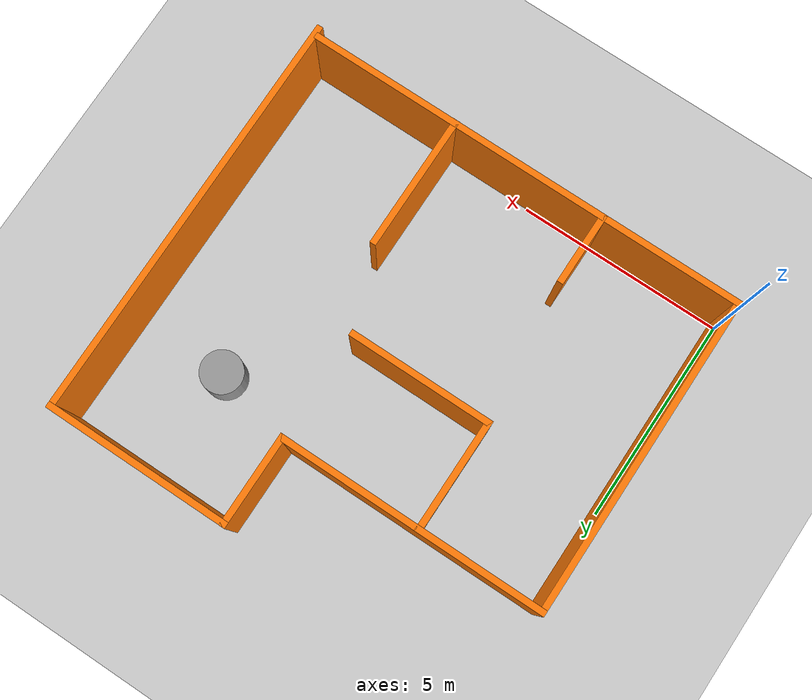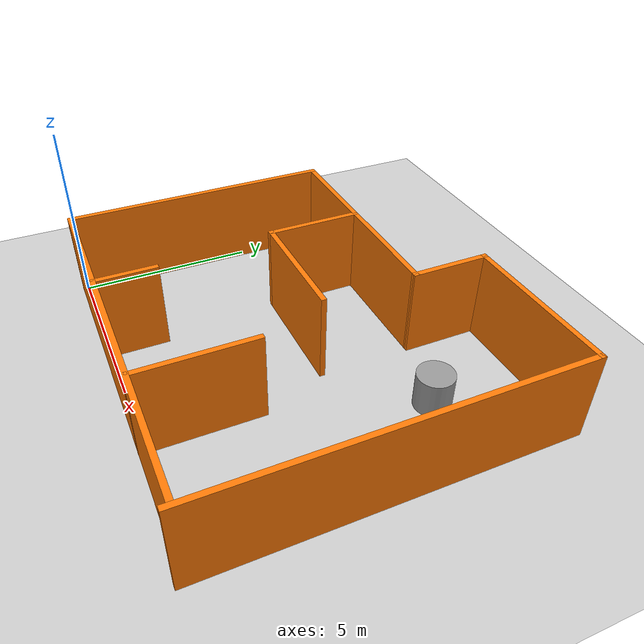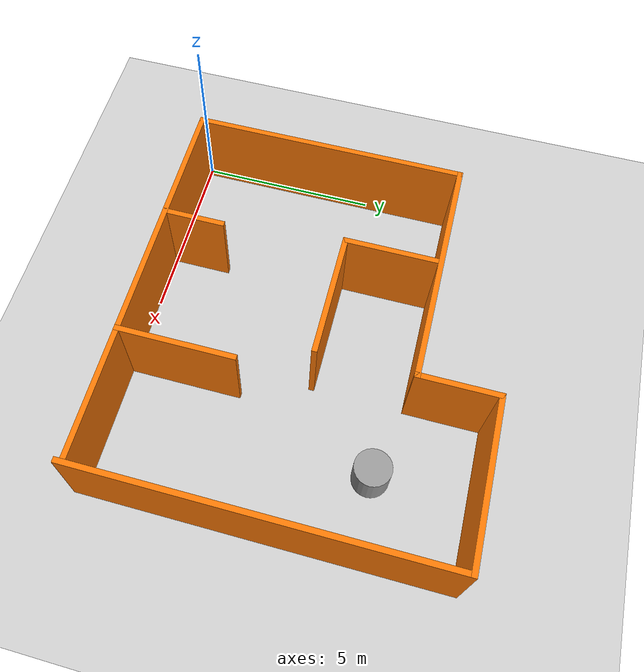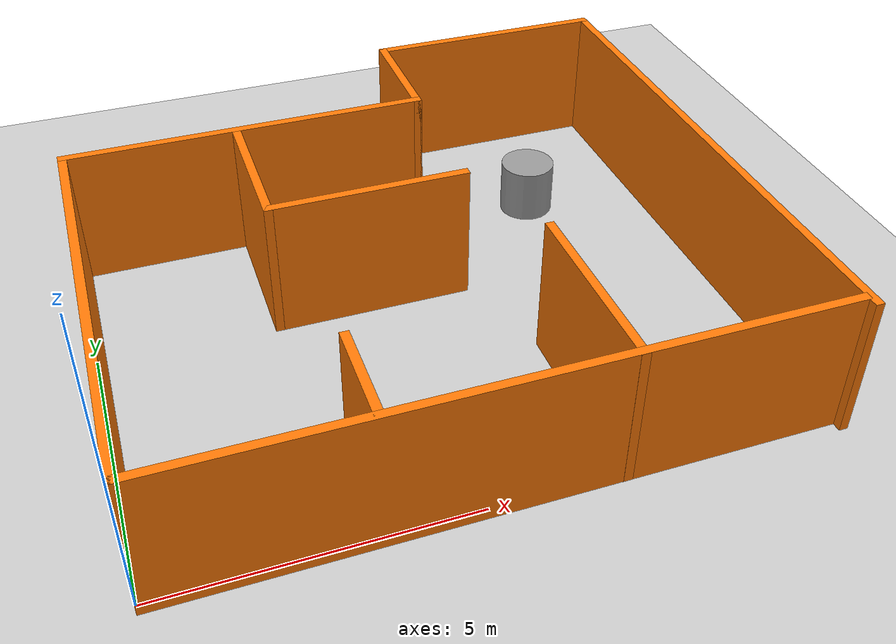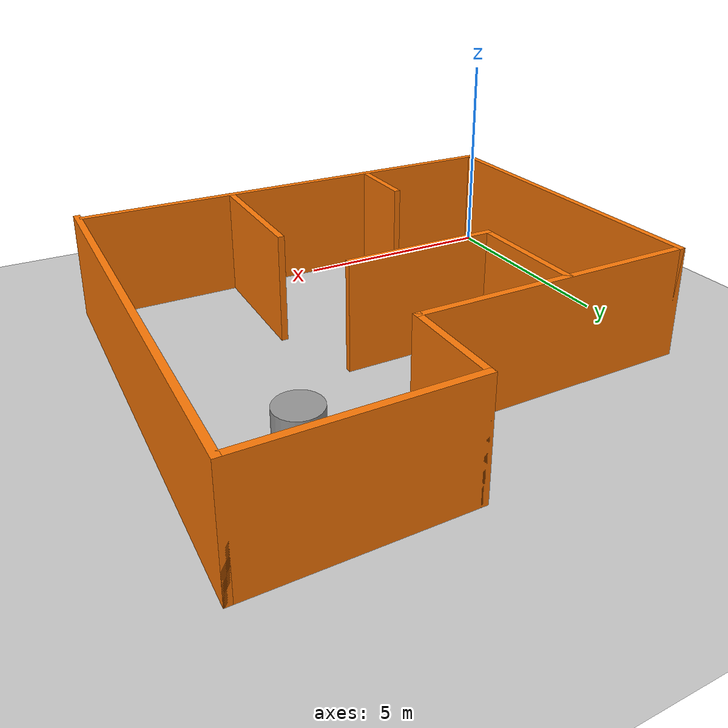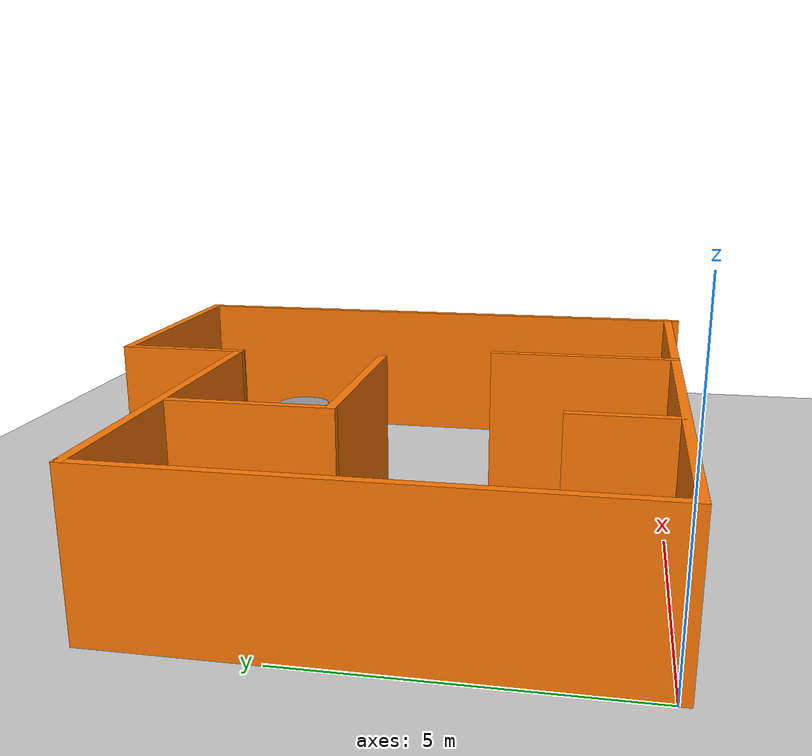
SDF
<sdf version="1.6">
 <world name="default">
  <light name="sun" type="directional">
   <pose>0 0 10 0 -0 0</pose>
   <diffuse>0.8 0.8 0.8 1</diffuse>
   <specular>0.1 0.1 0.1 1</specular>
   <attenuation>
    <range>1000</range>
    <constant>0.9</constant>
    <linear>0.01</linear>
    <quadratic>0.001</quadratic>
   </attenuation>
   <direction>-0.5 0.5 -1</direction>
  </light>
  <model name="ground_plane">
   <static>1</static>
   <link name="link">
    <collision name="collision">
     <geometry><plane><normal>0 0 1</normal><size>100 100</size></plane></geometry>
     <surface><friction><ode><mu>100</mu><mu2>50</mu2></ode></friction></surface>
    </collision>
    <visual name="visual">
     <cast_shadows>0</cast_shadows>
     <geometry><plane><normal>0 0 1</normal><size>100 100</size></plane></geometry>
     <material>
      <script><uri>file://media/materials/scripts/gazebo.material</uri><name>Gazebo/Grey</name></script>
     </material>
    </visual>
   </link>
  </model>
  <gravity>0 0 -9.8</gravity>
  <magnetic_field>6e-06 2.3e-05 -4.2e-05</magnetic_field>
  <atmosphere type="adiabatic"/>
  <physics name="default_physics" default="0" type="ode">
   <max_step_size>0.001</max_step_size>
   <real_time_factor>1</real_time_factor>
   <real_time_update_rate>1000</real_time_update_rate>
  </physics>
  <scene><ambient>0.4 0.4 0.4 1</ambient><background>0.7 0.7 0.7 1</background><shadows>1</shadows></scene>
  <spherical_coordinates>
   <surface_model>EARTH_WGS84</surface_model>
   <latitude_deg>0</latitude_deg>
   <longitude_deg>0</longitude_deg>
   <elevation>0</elevation>
   <heading_deg>0</heading_deg>
  </spherical_coordinates>
  <model name="maze2">
   <pose>5.41782 4.68853 0 0 -0 0</pose>
   <link name="Wall_12">
    <collision name="Wall_12_Collision">
     <geometry><box><size>10.75 0.15 2.5</size></box></geometry>
     <pose>0 0 1.25 0 -0 0</pose>
    </collision>
    <visual name="Wall_12_Visual">
     <pose>0 0 1.25 0 -0 0</pose>
     <geometry><box><size>10.75 0.15 2.5</size></box></geometry>
     <material>
      <script><uri>file://media/materials/scripts/gazebo.material</uri><name>Gazebo/Grey</name></script>
      <ambient>0.996078 0.47451 0.0196078 1</ambient>
     </material>
    </visual>
    <pose>-0.05 -4.775 0 0 -0 0</pose>
   </link>
   <link name="Wall_14">
    <collision name="Wall_14_Collision">
     <geometry><box><size>7.75 0.15 2.5</size></box></geometry>
     <pose>0 0 1.25 0 -0 0</pose>
    </collision>
    <visual name="Wall_14_Visual">
     <pose>0 0 1.25 0 -0 0</pose>
     <geometry><box><size>7.75 0.15 2.5</size></box></geometry>
     <material>
      <script><uri>file://media/materials/scripts/gazebo.material</uri><name>Gazebo/Grey</name></script>
      <ambient>0.996078 0.47451 0.0196078 1</ambient>
     </material>
    </visual>
    <pose>-5.35 -0.975 0 0 -0 1.5708</pose>
   </link>
   <link name="Wall_15">
    <collision name="Wall_15_Collision">
     <geometry><box><size>6.5 0.15 2.5</size></box></geometry>
     <pose>0 0 1.25 0 -0 0</pose>
    </collision>
    <visual name="Wall_15_Visual">
     <pose>0 0 1.25 0 -0 0</pose>
     <geometry><box><size>6.5 0.15 2.5</size></box></geometry>
     <material>
      <script><uri>file://media/materials/scripts/gazebo.material</uri><name>Gazebo/Grey</name></script>
      <ambient>0.996078 0.47451 0.0196078 1</ambient>
     </material>
    </visual>
    <pose>-2.175 2.825 0 0 -0 0</pose>
   </link>
   <link name="Wall_21">
    <collision name="Wall_21_Collision">
     <geometry><box><size>2.75 0.15 2.5</size></box></geometry>
     <pose>0 0 1.25 0 -0 0</pose>
    </collision>
    <visual name="Wall_21_Visual">
     <pose>0 0 1.25 0 -0 0</pose>
     <geometry><box><size>2.75 0.15 2.5</size></box></geometry>
     <material>
      <script><uri>file://media/materials/scripts/gazebo.material</uri><name>Gazebo/Grey</name></script>
      <ambient>0.996078 0.47451 0.0196078 1</ambient>
     </material>
    </visual>
    <pose>-2.36936 1.51812 0 0 0 -1.5708</pose>
   </link>
   <link name="Wall_22">
    <collision name="Wall_22_Collision">
     <geometry><box><size>3.5 0.15 2.5</size></box></geometry>
     <pose>0 0 1.25 0 -0 0</pose>
    </collision>
    <visual name="Wall_22_Visual">
     <pose>0 0 1.25 0 -0 0</pose>
     <geometry><box><size>3.5 0.15 2.5</size></box></geometry>
     <material>
      <script><uri>file://media/materials/scripts/gazebo.material</uri><name>Gazebo/Grey</name></script>
      <ambient>0.996078 0.47451 0.0196078 1</ambient>
     </material>
    </visual>
    <pose>-0.694363 0.218122 0 0 -0 0</pose>
   </link>
   <link name="Wall_29">
    <collision name="Wall_29_Collision">
     <geometry><box><size>1.75 0.15 2.5</size></box></geometry>
     <pose>0 0 1.25 0 -0 0</pose>
    </collision>
    <visual name="Wall_29_Visual">
     <pose>0 0 1.25 0 -0 0</pose>
     <geometry><box><size>1.75 0.15 2.5</size></box></geometry>
     <material>
      <script><uri>file://media/materials/scripts/gazebo.material</uri><name>Gazebo/Grey</name></script>
      <ambient>0.996078 0.47451 0.0196078 1</ambient>
     </material>
    </visual>
    <pose>-2.01087 -3.95373 0 0 0 -1.57085</pose>
   </link>
   <link name="Wall_32">
    <collision name="Wall_32_Collision">
     <geometry><box><size>2.25 0.15 2.5</size></box></geometry>
     <pose>0 0 1.25 0 -0 0</pose>
    </collision>
    <visual name="Wall_32_Visual">
     <pose>0 0 1.25 0 -0 0</pose>
     <geometry><box><size>2.25 0.15 2.5</size></box></geometry>
     <material>
      <script><uri>file://media/materials/scripts/gazebo.material</uri><name>Gazebo/Grey</name></script>
      <ambient>0.996078 0.47451 0.0196078 1</ambient>
     </material>
    </visual>
    <pose>1 3.875 0 0 -0 1.5708</pose>
   </link>
   <link name="Wall_33">
    <collision name="Wall_33_Collision">
     <geometry><box><size>4.5 0.15 2.5</size></box></geometry>
     <pose>0 0 1.25 0 -0 0</pose>
    </collision>
    <visual name="Wall_33_Visual">
     <pose>0 0 1.25 0 -0 0</pose>
     <geometry><box><size>4.5 0.15 2.5</size></box></geometry>
     <material>
      <script><uri>file://media/materials/scripts/gazebo.material</uri><name>Gazebo/Grey</name></script>
      <ambient>0.996078 0.47451 0.0196078 1</ambient>
     </material>
    </visual>
    <pose>3.175 4.925 0 0 -0 0</pose>
   </link>
   <link name="Wall_35">
    <collision name="Wall_35_Collision">
     <geometry><box><size>10 0.15 2.5</size></box></geometry>
     <pose>0 0 1.25 0 -0 0</pose>
    </collision>
    <visual name="Wall_35_Visual">
     <pose>0 0 1.25 0 -0 0</pose>
     <geometry><box><size>10 0.15 2.5</size></box></geometry>
     <material>
      <script><uri>file://media/materials/scripts/gazebo.material</uri><name>Gazebo/Grey</name></script>
      <ambient>0.996078 0.47451 0.0196078 1</ambient>
     </material>
    </visual>
    <pose>5.35 0 0 0 0 -1.5708</pose>
   </link>
   <link name="Wall_41">
    <collision name="Wall_41_Collision">
     <geometry><box><size>3.25 0.15 2.5</size></box></geometry>
     <pose>0 0 1.25 0 -0 0</pose>
    </collision>
    <visual name="Wall_41_Visual">
     <pose>0 0 1.25 0 -0 0</pose>
     <geometry><box><size>3.25 0.15 2.5</size></box></geometry>
     <material>
      <script><uri>file://media/materials/scripts/gazebo.material</uri><name>Gazebo/Grey</name></script>
      <ambient>0.996078 0.47451 0.0196078 1</ambient>
     </material>
    </visual>
    <pose>1.72034 -3.22827 0 0 -0 1.5708</pose>
   </link>
   <static>1</static>
  </model>
  <model name="unit_cylinder_0">
   <pose>8.5 7 0.499997 4e-06 4e-06 -0</pose>
   <link name="link">
    <inertial>
     <mass>1</mass>
     <inertia><ixx>0.145833</ixx><ixy>0</ixy><ixz>0</ixz><iyy>0.145833</iyy><iyz>0</iyz><izz>0.125</izz></inertia>
    </inertial>
    <collision name="collision">
     <geometry><cylinder><radius>0.5</radius><length>1</length></cylinder></geometry>
    </collision>
    <visual name="visual">
     <geometry><cylinder><radius>0.5</radius><length>1</length></cylinder></geometry>
     <material>
      <script><name>Gazebo/Grey</name><uri>file://media/materials/scripts/gazebo.material</uri></script>
     </material>
    </visual>
   </link>
  </model>
 </world>
</sdf>
